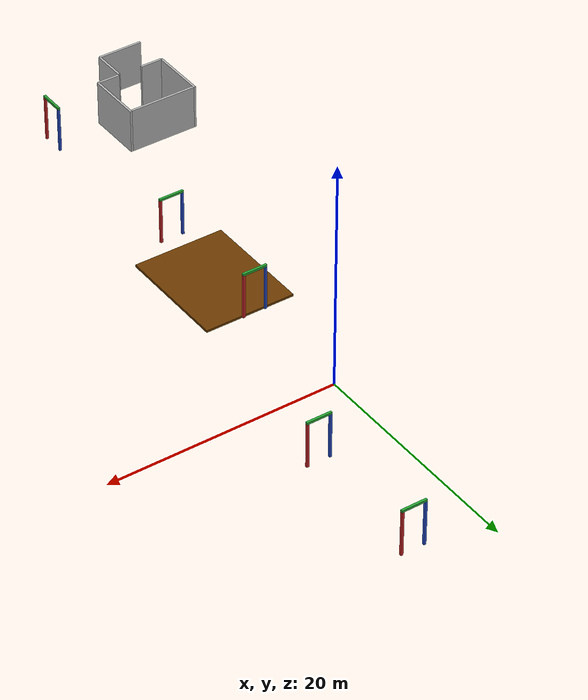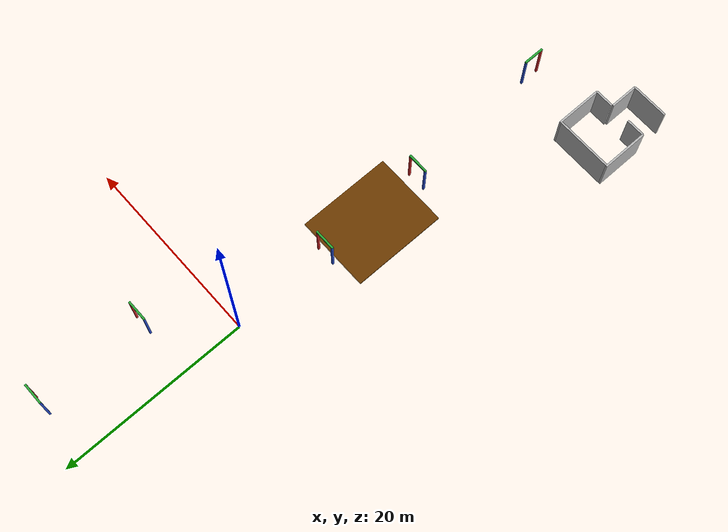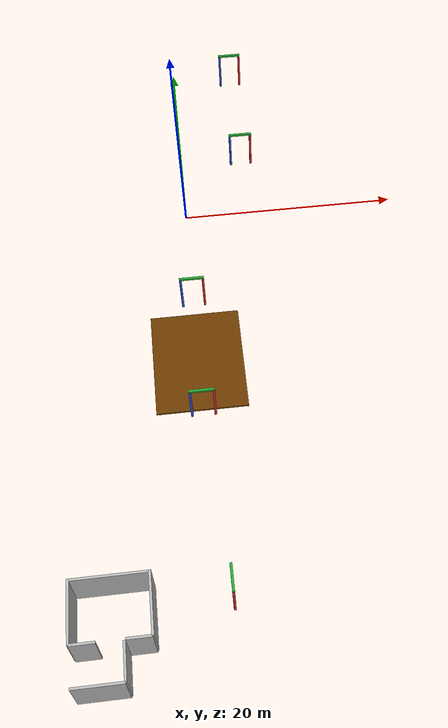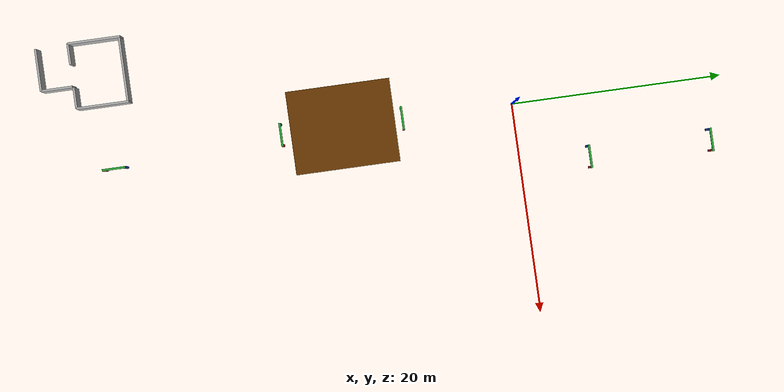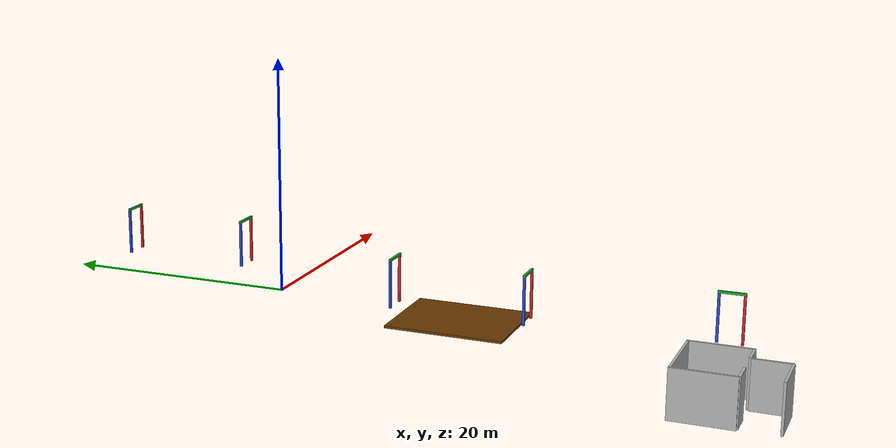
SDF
<sdf version="1.3">
 <world name="default">
  <scene><ambient>0.8 0.8 0.8 1.0</ambient></scene>
  <light type="directional" name="sun">
   <pose>0 0 100 0 0 0</pose>
   <diffuse>0.5 0.5 0.5 1</diffuse>
   <specular>0.1 0.1 0.1 1</specular>
   <attenuation>
    <range>1000</range>
    <constant>0.9</constant>
    <linear>0.01</linear>
    <quadratic>0.001</quadratic>
   </attenuation>
   <direction>0.2 0.0 -1.0</direction>
  </light>
  <include><uri>model://starting_pen</uri><pose>-8.27 -38 0.0 0 0 -1.5707</pose></include>
  <include><uri>model://gate</uri><name>start_gate</name><pose>1 -38 2.0 0 0 0</pose></include>
  <include><uri>model://gate</uri><name>gate_2</name><pose>0 -22 2.0 0 0 1.5707</pose></include>
  <include><uri>model://gate</uri><name>gate_3</name><pose>0 -10.5 2.0 0 0 1.5707</pose></include>
  <include><uri>model://gate</uri><name>gate_4</name><pose>6.0 6.5 2.0 0 0 1.5707</pose></include>
  <include><uri>model://gate</uri><name>gate_5</name><pose>6 18 2 0 0 1.5707</pose></include>
  <model name="box">
   <pose>-0.08 -16.22 -.58 0 0 0</pose>
   <static>true</static>
   <link name="link">
    <collision name="collision"><geometry><box><size>8 10 0.2</size></box></geometry></collision>
    <visual name="visual">
     <geometry><box><size>8 10 0.2</size></box></geometry>
     <material><ambient>0.2 0.2 0.2 1.0</ambient><diffuse>.421 0.225 0.0 1.0</diffuse></material>
    </visual>
   </link>
  </model>
  <plugin filename="libRubblePlugin.so" name="rubble">
   <bottom_right>4 7.0 0.0</bottom_right>
   <top_left>10 17 0.4</top_left>
   <min_size>0.05 0.05 0.05</min_size>
   <max_size>0.2 0.2 0.2</max_size>
   <min_mass>0.1</min_mass>
   <max_mass>1.0</max_mass>
   <count>50</count>
  </plugin>
 </world>
</sdf>

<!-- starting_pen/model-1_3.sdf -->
<sdf version="1.3">
  <model name="starting_pen">
    <static>true</static>
    <pose>-2.0 0 2.0 0 0 0</pose>

    <link name="link">
      <collision name="back_collision">
        <pose>-2 0 0 0 0 0</pose>
        <geometry>
          <box>
            <size>0.2 6 4.0</size>
          </box>
        </geometry>
      </collision>
      <visual name="back_visual">
        <pose>-2 0 0 0 0 0</pose>
        <geometry>
          <box>
            <size>0.2 6 4.0</size>
          </box>
        </geometry>
        <material>
          <script>
            <uri>file://media/materials/scripts/drc_qual.material</uri>
            <name>DRCQual/WarningWall</name>
          </script>
        </material>
      </visual>

      <collision name="left_collision">
        <pose>0.4 -3.1 0 0 0 0</pose>
        <geometry>
          <box>
            <size>5 0.2 4.0</size>
          </box>
        </geometry>
      </collision>
      <visual name="left_visual_lower">
        <pose>0.4 -3.1 0.0 0 0 0</pose>
        <geometry>
          <box>
            <size>5 0.2 4.0</size>
          </box>
        </geometry>
        <material>
          <script>
            <uri>file://media/materials/scripts/drc_qual.material</uri>
            <name>DRCQual/WarningWall</name>
          </script>
        </material>
      </visual>

      <collision name="right_collision">
        <pose>0.4 3.1 0 0 0 0</pose>
        <geometry>
          <box>
            <size>5 0.2 4.0</size>
          </box>
        </geometry>
      </collision>
      <visual name="right_visual">
        <pose>0.4 3.1 0 0 0 0</pose>
        <geometry>
          <box>
            <size>5 0.2 4.0</size>
          </box>
        </geometry>
        <material>
          <script>
            <uri>file://media/materials/scripts/drc_qual.material</uri>
            <name>DRCQual/WarningWall</name>
          </script>
        </material>
      </visual>

      <collision name="front_right_collision">
        <pose>2.9 2.1 0 0 0 0</pose>
        <geometry>
          <box>
            <size>0.2 2.0 4.0</size>
          </box>
        </geometry>
      </collision>
      <visual name="front_right_visual">
        <pose>2.9 2.1 0 0 0 0</pose>
        <geometry>
          <box>
            <size>0.2 2.0 4.0</size>
          </box>
        </geometry>
        <material>
          <script>
            <uri>file://media/materials/scripts/drc_qual.material</uri>
            <name>DRCQual/WarningWall</name>
          </script>
        </material>
      </visual>

      <collision name="front_left_collision">
        <pose>2.9 -2.1 0 0 0 0</pose>
        <geometry>
          <box>
            <size>0.2 2.0 4.0</size>
          </box>
        </geometry>
      </collision>
      <visual name="front_left_visual">
        <pose>2.9 -2.1 0 0 0 0</pose>
        <geometry>
          <box>
            <size>0.2 2.0 4.0</size>
          </box>
        </geometry>
        <material>
          <script>
            <uri>file://media/materials/scripts/drc_qual.material</uri>
            <name>DRCQual/WarningWall</name>
          </script>
        </material>
      </visual>

      <collision name="front_collision">
        <pose>6.0 -1 0 0 0 0</pose>
        <geometry>
          <box>
            <size>0.2 4 4.0</size>
          </box>
        </geometry>
      </collision>
      <visual name="front_visual">
        <pose>6.0 -1 0 0 0 3.1415</pose>
        <geometry>
          <mesh>
            <uri>model://arrow_wall/meshes/arrow_wall.dae</uri>
          </mesh>
        </geometry>
      </visual>

      <collision name="entryway_collision">
        <pose>4.5 1.0 0 0 0 0</pose>
        <geometry>
          <box>
            <size>3.0 .2 4.0</size>
          </box>
        </geometry>
      </collision>
      <visual name="entryway_visual">
        <pose>4.5 1.0 0 0 0 0</pose>
        <geometry>
          <box>
            <size>3.0 .2 4.0</size>
          </box>
        </geometry>
        <material>
          <script>
            <uri>file://media/materials/scripts/drc_qual.material</uri>
            <name>DRCQual/WarningWall</name>
          </script>
        </material>
      </visual>

    </link>
  </model>
</sdf>

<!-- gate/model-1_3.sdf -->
<sdf version="1.3">

  <model name="gate">
    <static>true</static>
    <pose>0 0 2.0 0 0 0</pose>
    <link name="link">
      <collision name="right_collision">
        <pose>0 -1.0 0 0 0 0</pose>
        <geometry>
          <box>
            <size>0.2 0.2 4.0</size>
          </box>
        </geometry>
      </collision>
      <visual name="right_visual">
        <pose>0 -1.0 0 0 0 0</pose>
        <geometry>
          <box>
            <size>0.2 0.2 4.0</size>
          </box>
        </geometry>
        <material>
          <script>
            <uri>model://gate/materials/scripts/gate.material</uri>
            <uri>model://gate/materials/textures</uri>
            <name>vrc/red_gate</name>
          </script>
        </material>
      </visual>

      <collision name="left_collision">
        <pose>0 1.0 0 0 0 0</pose>
        <geometry>
          <box>
            <size>0.2 0.2 4.0</size>
          </box>
        </geometry>
      </collision>
      <visual name="left_visual">
        <pose>0 1.0 0 0 0 0</pose>
        <geometry>
          <box>
            <size>0.2 0.2 4.0</size>
          </box>
        </geometry>
        <material>
          <script>
            <uri>model://gate/materials/scripts/gate.material</uri>
            <uri>model://gate/materials/textures</uri>
            <name>vrc/blue_gate</name>
          </script>
        </material>
      </visual>

      <collision name="top_collision">
        <pose>0 0 2.1 0 0 0</pose>
        <geometry>
          <box>
            <size>0.2 2.2 0.2</size>
          </box>
        </geometry>
      </collision>
      <visual name="top_visual">
        <pose>0 0 2.1 0 0 0</pose>
        <geometry>
          <box>
            <size>0.2 2.2 0.2</size>
          </box>
        </geometry>
        <material>
          <script>
            <uri>model://gate/materials/scripts/gate.material</uri>
            <uri>model://gate/materials/textures</uri>
            <name>vrc/green_gate</name>
          </script>
        </material>
      </visual>
    </link>
  </model>
</sdf>
